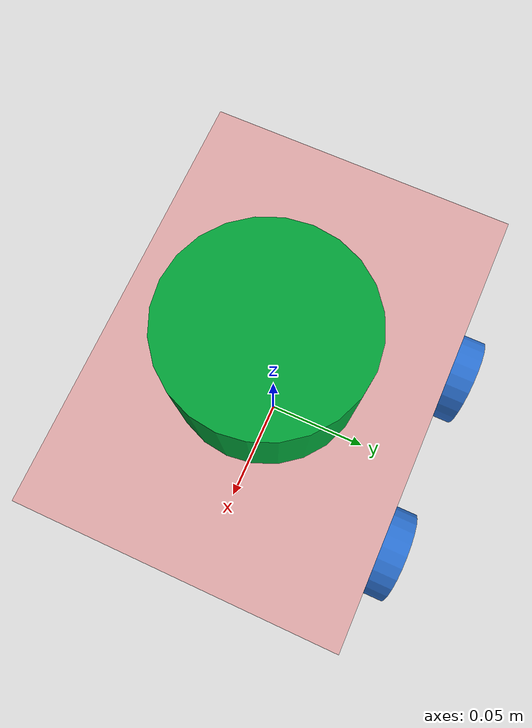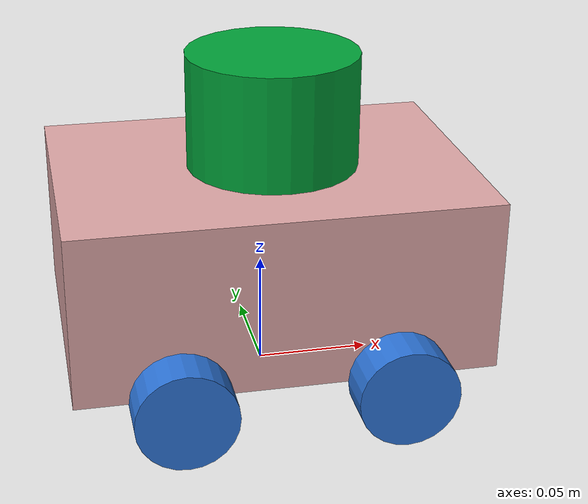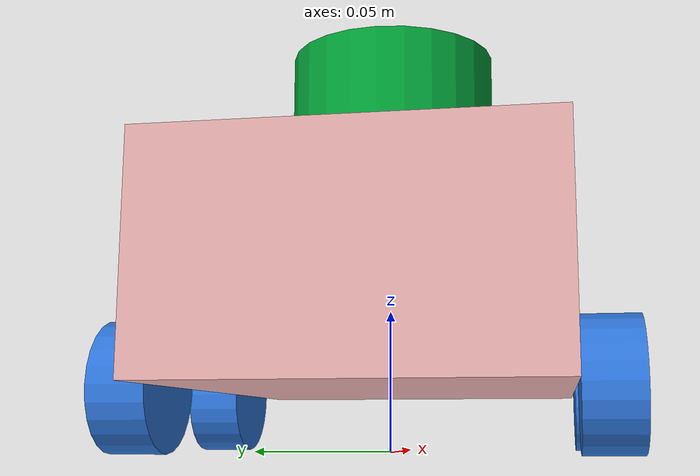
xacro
<?xml version="1.0"?>
<robot name="linorobot2_2wd" xmlns:xacro="http://ros.org/wiki/xacro">

  <xacro:include filename="$(find buraq_description)/urdf/4wd_properties.urdf.xacro" />
  <xacro:include filename="$(find buraq_description)/urdf/base.urdf.xacro" />
  <xacro:include filename="$(find buraq_description)/urdf/wheel.urdf.xacro" />
  <xacro:include filename="$(find buraq_description)/urdf/sensors/imu.urdf.xacro" />
  <xacro:include filename="$(find buraq_description)/urdf/sensors/generic_laser.urdf.xacro" />
  <xacro:include filename="$(find buraq_description)/urdf/buraq_ros2_control.urdf.xacro" />

  <xacro:base
    length="${base_length}"
    width="${base_width}"
    height="${base_height}"
    mass="${base_mass}"
    wheel_radius="${wheel_radius}"
    wheel_pos_z="${wheel_pos_z}"
/>

  <xacro:wheel
    side="front_left"
    radius="${wheel_radius}"
    width="${wheel_width}"
    pos_x="${wheel_pos_x}"
    pos_y="${wheel_pos_y}"
    pos_z="${wheel_pos_z}"
    mass="${wheel_mass}"
  />

  <xacro:wheel
    side="front_right"
    radius="${wheel_radius}"
    width="${wheel_width}"
    pos_x="${wheel_pos_x}"
    pos_y="${-wheel_pos_y}"
    pos_z="${wheel_pos_z}"
    mass="${wheel_mass}"
  />
  <xacro:wheel
    side="rear_left"
    radius="${wheel_radius}"
    width="${wheel_width}"
    pos_x="${-wheel_pos_x}"
    pos_y="${wheel_pos_y}"
    pos_z="${wheel_pos_z}"
    mass="${wheel_mass}"
  />

  <xacro:wheel
    side="rear_right"
    radius="${wheel_radius}"
    width="${wheel_width}"
    pos_x="${-wheel_pos_x}"
    pos_y="${-wheel_pos_y}"
    pos_z="${wheel_pos_z}"
    mass="${wheel_mass}"
  />

  <xacro:imu/>

  <xacro:generic_laser>
    <xacro:insert_block name="laser_pose" />
  </xacro:generic_laser>

  <!-- ROS2 Control -->
  <xacro:buraq_ros2_control name="BuraqRobot"/>
</robot>

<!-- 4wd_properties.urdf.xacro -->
<robot xmlns:xacro="http://ros.org/wiki/xacro">
  <xacro:property name="base_length" value="0.180" />
  <xacro:property name="base_width" value="0.130" />
  <xacro:property name="base_height" value="0.075" />
  <xacro:property name="base_mass" value="1" />

  <xacro:property name="wheel_radius" value="0.0215" />
  <xacro:property name="wheel_width" value="0.019" />
  <xacro:property name="wheel_pos_x" value="0.046" />
  <xacro:property name="wheel_pos_y" value="0.075" />
  <xacro:property name="wheel_pos_z" value="0.0" />
  <xacro:property name="wheel_mass" value=".02" />
  <xacro:property name="wheel_torque" value="0.016" />

  <xacro:property name="laser_pose">
    <origin xyz="0.0053 0 0.125" rpy="0 0 0"/>
  </xacro:property>

</robot>

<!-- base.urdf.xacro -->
<robot xmlns:xacro="http://ros.org/wiki/xacro">
  <xacro:macro name="base" params="length width height mass wheel_radius wheel_pos_z">
    <link name="base_footprint"/>

    <link name="base_link">
      <visual>
        <origin xyz="0 0 ${height/2}" rpy="0 0 0"/>
        <geometry>
          <box size="${length} ${width} ${height}"/>
        </geometry>
        <material name="yellow">
          <color rgba="0.8784 0.6627 0.6627 1.0"/>
        </material>
      </visual>

      <collision>
        <origin xyz="0 0 0" rpy="0 0 0"/>
        <geometry>
          <box size="${length} ${width} ${height}"/>
        </geometry>
      </collision>

      <inertial>
        <origin xyz="0 0 0" rpy="0 0 0"/>
        <mass value="${mass}"/>
        <inertia ixx="${(1/12) * mass * ((width  * width)  + (height * height))}" ixy="0.0" ixz="0.0"
                 iyy="${(1/12) * mass * ((length * length) + (height * height))}" iyz="0.0"
                 izz="${(1/12) * mass * ((length * length) + (width  * width))}"/>
      </inertial>
    </link>

    <joint name="base_to_footprint" type="fixed">
      <parent link="base_footprint"/>
      <child link="base_link"/>
      <origin xyz="0 0 ${wheel_radius}" rpy="0 0 0"/>
    </joint>
  </xacro:macro>
</robot>

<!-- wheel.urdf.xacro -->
<robot xmlns:xacro="http://ros.org/wiki/xacro">
  <xacro:macro name="wheel" params="side radius width pos_x pos_y pos_z mass">
    <link name="${side}_wheel_link">
      <visual>
        <origin xyz="0 0 0" rpy="${pi/2} 0 0"/>
        <geometry>
          <cylinder radius="${radius}" length="${width}"/>
        </geometry>
        <material name="blue">
            <color rgba="0.1764 0.4588 0.8509 1.0"/>
        </material>
      </visual>
      <collision>
        <origin xyz="0 0 0" rpy="${pi/2} 0 0"/>
        <geometry>
          <cylinder radius="${radius}" length="${width}"/>
        </geometry>
      </collision>

      <inertial>
        <origin xyz="0 0 0" rpy="0 0 0"/>
        <mass value="${mass}"/>
        <inertia ixx="${(2/5) * mass * (radius * radius)}" ixy="0" ixz="0"
                 iyy="${(2/5) * mass * (radius * radius)}" iyz="0"
                 izz="${(2/5) * mass * (radius * radius)}" />
      </inertial>
    </link>

    <joint name="${side}_wheel_joint" type="continuous">
      <axis xyz="0 1 0" />
      <parent link="base_link"/>
      <child link="${side}_wheel_link"/>
      <origin xyz="${pos_x} ${pos_y} ${pos_z}" rpy="0 0 0"/>
    </joint>
  </xacro:macro>
</robot>

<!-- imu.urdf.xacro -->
<robot xmlns:xacro="http://ros.org/wiki/xacro">
  <xacro:macro name="imu">
    <link name="imu_link"/>

    <joint name="imu_to_base_link" type="fixed">
      <parent link="base_link"/>
      <child link="imu_link"/>
      <origin xyz="0 0 0" rpy="0 0 0"/>
    </joint>

  </xacro:macro>
</robot>

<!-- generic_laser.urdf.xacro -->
<robot xmlns:xacro="http://ros.org/wiki/xacro">
  <xacro:include filename="$(find buraq_description)/urdf/sensors/laser.urdf.xacro" />

  <xacro:macro name="generic_laser" params="*origin">
    <xacro:laser
      update_rate="10"
      ray_count="360"
      min_angle="-3.1416"
      max_angle="3.1416"
      min_range="0.08"
      max_range="12.0"
      frame_id="laser"
      topic_name="scan"
    >
      <xacro:insert_block name="origin" />
    </xacro:laser>
  </xacro:macro>

  <xacro:macro name="generic_base_laser" params="*origin">
    <xacro:laser
      update_rate="10"
      ray_count="360"
      min_angle="-3.1416"
      max_angle="3.1416"
      min_range="0.21"
      max_range="5.5"
      frame_id="base_laser"
      topic_name="base/scan"
    >
      <xacro:insert_block name="origin" />
    </xacro:laser>
  </xacro:macro>
</robot>

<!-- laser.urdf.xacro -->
<robot xmlns:xacro="http://ros.org/wiki/xacro">
  <xacro:property name="M_PI" value="3.1415926535897931" />
  <xacro:macro name="laser" params="*origin update_rate ray_count min_angle max_angle min_range max_range frame_id topic_name">
    <link name="${frame_id}">
      <visual>
        <origin xyz="0 0 -0.025" rpy="0 0 0"/>
        <geometry>
          <cylinder radius="0.0375" length="0.05"/>
        </geometry>
        <material name="green">
            <color rgba="0.003 0.639 0.223 1.0"/>
        </material>
      </visual>
      <collision>
        <origin xyz="0 0 -0.025" rpy="0 0 0"/>
        <geometry>
          <cylinder radius="0.0375" length="0.05"/>
        </geometry>
      </collision>

      <inertial>
        <origin xyz="0 0 0" rpy="0 0 0"/>
        <mass value="0.1"/>
        <inertia ixx="${(2/5) * 0.1 * (0.0375 * 0.0375)}" ixy="0" ixz="0"
                 iyy="${(2/5) * 0.1 * (0.0375 * 0.0375)}" iyz="0"
                 izz="${(2/5) * 0.1 * (0.0375 * 0.0375)}" />
      </inertial>
    </link>

    <joint name="${frame_id}_to_base_link" type="fixed">
      <parent link="base_link"/>
      <child link="${frame_id}"/>
      <xacro:insert_block name="origin" />
    </joint>

  </xacro:macro>
</robot>
